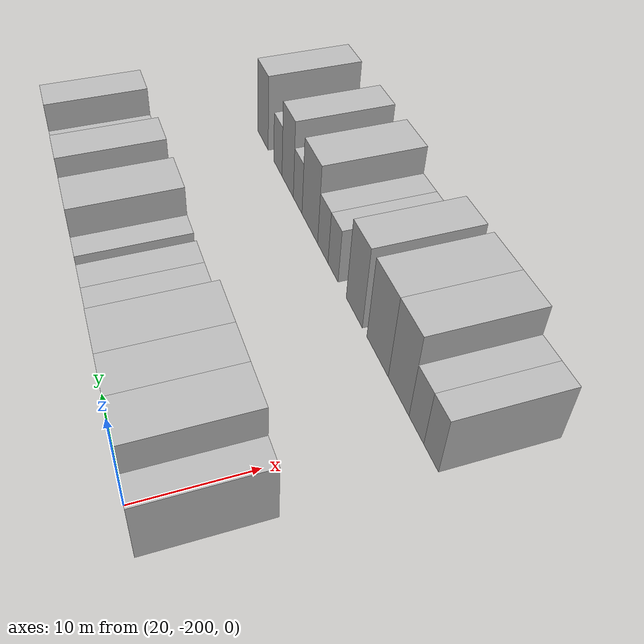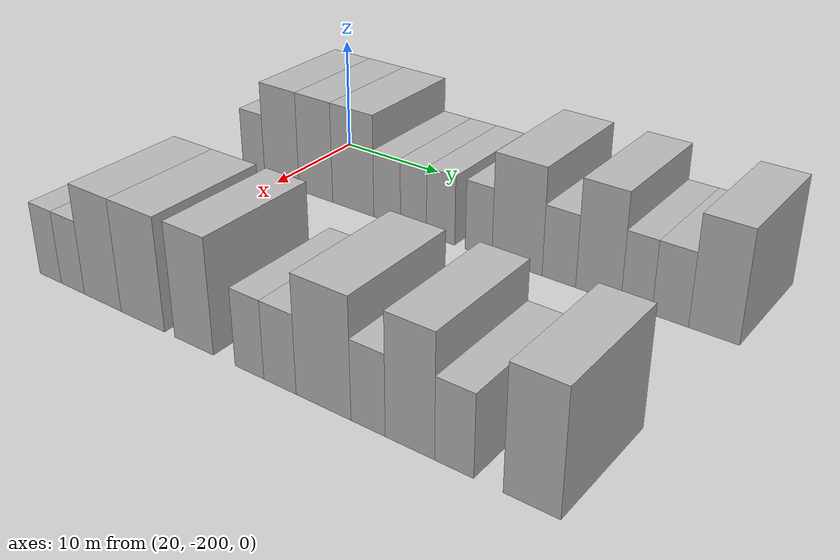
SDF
<sdf version="1.6">
 <world name="default">
  <model name="building_1">
   <static>1</static>
   <pose>25.0000 -202.7227 0 0.000000 0.000000 0.000000</pose>
   <link name="link">
    <pose>0 0 3.00 0 0 0</pose>
    <collision name="collision"><geometry><box><size>10.0000 2.5547 6.0000</size></box></geometry></collision>
    <visual name="visual">
     <cast_shadows>0</cast_shadows>
     <geometry><box><size>10.0000 2.5547 6.0000</size></box></geometry>
     <material>
      <script>
       <uri>model://HANNAS_wall/materials/scripts</uri>
       <uri>model://HANNAS_wall/materials/textures</uri>
       <name>vrc/HANNAS_wall</name>
      </script>
     </material>
    </visual>
   </link>
  </model>
  <model name="building_2">
   <static>1</static>
   <pose>25.0000 -199.4642 0 0.000000 0.000000 0.000000</pose>
   <link name="link">
    <pose>0 0 4.50 0 0 0</pose>
    <collision name="collision"><geometry><box><size>10.0000 3.9621 9.0000</size></box></geometry></collision>
    <visual name="visual">
     <cast_shadows>0</cast_shadows>
     <geometry><box><size>10.0000 3.9621 9.0000</size></box></geometry>
     <material>
      <script>
       <uri>model://HANNAS_wall/materials/scripts</uri>
       <uri>model://HANNAS_wall/materials/textures</uri>
       <name>vrc/HANNAS_wall</name>
      </script>
     </material>
    </visual>
   </link>
  </model>
  <model name="building_3">
   <static>1</static>
   <pose>25.0000 -195.6137 0 0.000000 0.000000 0.000000</pose>
   <link name="link">
    <pose>0 0 4.50 0 0 0</pose>
    <collision name="collision"><geometry><box><size>10.0000 3.7389 9.0000</size></box></geometry></collision>
    <visual name="visual">
     <cast_shadows>0</cast_shadows>
     <geometry><box><size>10.0000 3.7389 9.0000</size></box></geometry>
     <material>
      <script>
       <uri>model://HANNAS_wall/materials/scripts</uri>
       <uri>model://HANNAS_wall/materials/textures</uri>
       <name>vrc/HANNAS_wall</name>
      </script>
     </material>
    </visual>
   </link>
  </model>
  <model name="building_4">
   <static>1</static>
   <pose>25.0000 -191.5522 0 0.000000 0.000000 0.000000</pose>
   <link name="link">
    <pose>0 0 4.50 0 0 0</pose>
    <collision name="collision"><geometry><box><size>10.0000 4.3840 9.0000</size></box></geometry></collision>
    <visual name="visual">
     <cast_shadows>0</cast_shadows>
     <geometry><box><size>10.0000 4.3840 9.0000</size></box></geometry>
     <material>
      <script>
       <uri>model://HANNAS_wall/materials/scripts</uri>
       <uri>model://HANNAS_wall/materials/textures</uri>
       <name>vrc/HANNAS_wall</name>
      </script>
     </material>
    </visual>
   </link>
  </model>
  <model name="building_5">
   <static>1</static>
   <pose>25.0000 -188.0011 0 0.000000 0.000000 0.000000</pose>
   <link name="link">
    <pose>0 0 3.00 0 0 0</pose>
    <collision name="collision"><geometry><box><size>10.0000 2.7184 6.0000</size></box></geometry></collision>
    <visual name="visual">
     <cast_shadows>0</cast_shadows>
     <geometry><box><size>10.0000 2.7184 6.0000</size></box></geometry>
     <material>
      <script>
       <uri>model://HANNAS_wall/materials/scripts</uri>
       <uri>model://HANNAS_wall/materials/textures</uri>
       <name>vrc/HANNAS_wall</name>
      </script>
     </material>
    </visual>
   </link>
  </model>
  <model name="building_6">
   <static>1</static>
   <pose>25.0000 -185.3521 0 0.000000 0.000000 0.000000</pose>
   <link name="link">
    <pose>0 0 3.00 0 0 0</pose>
    <collision name="collision"><geometry><box><size>10.0000 2.5795 6.0000</size></box></geometry></collision>
    <visual name="visual">
     <cast_shadows>0</cast_shadows>
     <geometry><box><size>10.0000 2.5795 6.0000</size></box></geometry>
     <material>
      <script>
       <uri>model://HANNAS_wall/materials/scripts</uri>
       <uri>model://HANNAS_wall/materials/textures</uri>
       <name>vrc/HANNAS_wall</name>
      </script>
     </material>
    </visual>
   </link>
  </model>
  <model name="building_7">
   <static>1</static>
   <pose>25.0000 -182.6948 0 0.000000 0.000000 0.000000</pose>
   <link name="link">
    <pose>0 0 3.00 0 0 0</pose>
    <collision name="collision"><geometry><box><size>10.0000 2.7350 6.0000</size></box></geometry></collision>
    <visual name="visual">
     <cast_shadows>0</cast_shadows>
     <geometry><box><size>10.0000 2.7350 6.0000</size></box></geometry>
     <material>
      <script>
       <uri>model://HANNAS_wall/materials/scripts</uri>
       <uri>model://HANNAS_wall/materials/textures</uri>
       <name>vrc/HANNAS_wall</name>
      </script>
     </material>
    </visual>
   </link>
  </model>
  <model name="building_8">
   <static>1</static>
   <pose>25.0000 -179.0899 0 0.000000 0.000000 0.000000</pose>
   <link name="link">
    <pose>0 0 3.00 0 0 0</pose>
    <collision name="collision"><geometry><box><size>10.0000 2.4749 6.0000</size></box></geometry></collision>
    <visual name="visual">
     <cast_shadows>0</cast_shadows>
     <geometry><box><size>10.0000 2.4749 6.0000</size></box></geometry>
     <material>
      <script>
       <uri>model://HANNAS_wall/materials/scripts</uri>
       <uri>model://HANNAS_wall/materials/textures</uri>
       <name>vrc/HANNAS_wall</name>
      </script>
     </material>
    </visual>
   </link>
  </model>
  <model name="building_9">
   <static>1</static>
   <pose>25.0000 -175.6218 0 0.000000 0.000000 0.000000</pose>
   <link name="link">
    <pose>0 0 4.50 0 0 0</pose>
    <collision name="collision"><geometry><box><size>10.0000 4.4612 9.0000</size></box></geometry></collision>
    <visual name="visual">
     <cast_shadows>0</cast_shadows>
     <geometry><box><size>10.0000 4.4612 9.0000</size></box></geometry>
     <material>
      <script>
       <uri>model://HANNAS_wall/materials/scripts</uri>
       <uri>model://HANNAS_wall/materials/textures</uri>
       <name>vrc/HANNAS_wall</name>
      </script>
     </material>
    </visual>
   </link>
  </model>
  <model name="building_10">
   <static>1</static>
   <pose>25.0000 -171.9620 0 0.000000 0.000000 0.000000</pose>
   <link name="link">
    <pose>0 0 3.00 0 0 0</pose>
    <collision name="collision"><geometry><box><size>10.0000 2.8583 6.0000</size></box></geometry></collision>
    <visual name="visual">
     <cast_shadows>0</cast_shadows>
     <geometry><box><size>10.0000 2.8583 6.0000</size></box></geometry>
     <material>
      <script>
       <uri>model://HANNAS_wall/materials/scripts</uri>
       <uri>model://HANNAS_wall/materials/textures</uri>
       <name>vrc/HANNAS_wall</name>
      </script>
     </material>
    </visual>
   </link>
  </model>
  <model name="building_11">
   <static>1</static>
   <pose>25.0000 -168.6852 0 0.000000 0.000000 0.000000</pose>
   <link name="link">
    <pose>0 0 4.50 0 0 0</pose>
    <collision name="collision"><geometry><box><size>10.0000 3.6953 9.0000</size></box></geometry></collision>
    <visual name="visual">
     <cast_shadows>0</cast_shadows>
     <geometry><box><size>10.0000 3.6953 9.0000</size></box></geometry>
     <material>
      <script>
       <uri>model://HANNAS_wall/materials/scripts</uri>
       <uri>model://HANNAS_wall/materials/textures</uri>
       <name>vrc/HANNAS_wall</name>
      </script>
     </material>
    </visual>
   </link>
  </model>
  <model name="building_12">
   <static>1</static>
   <pose>25.0000 -165.6079 0 0.000000 0.000000 0.000000</pose>
   <link name="link">
    <pose>0 0 3.00 0 0 0</pose>
    <collision name="collision"><geometry><box><size>10.0000 2.4591 6.0000</size></box></geometry></collision>
    <visual name="visual">
     <cast_shadows>0</cast_shadows>
     <geometry><box><size>10.0000 2.4591 6.0000</size></box></geometry>
     <material>
      <script>
       <uri>model://HANNAS_wall/materials/scripts</uri>
       <uri>model://HANNAS_wall/materials/textures</uri>
       <name>vrc/HANNAS_wall</name>
      </script>
     </material>
    </visual>
   </link>
  </model>
  <model name="building_13">
   <static>1</static>
   <pose>25.0000 -162.9786 0 0.000000 0.000000 0.000000</pose>
   <link name="link">
    <pose>0 0 3.00 0 0 0</pose>
    <collision name="collision"><geometry><box><size>10.0000 2.7996 6.0000</size></box></geometry></collision>
    <visual name="visual">
     <cast_shadows>0</cast_shadows>
     <geometry><box><size>10.0000 2.7996 6.0000</size></box></geometry>
     <material>
      <script>
       <uri>model://HANNAS_wall/materials/scripts</uri>
       <uri>model://HANNAS_wall/materials/textures</uri>
       <name>vrc/HANNAS_wall</name>
      </script>
     </material>
    </visual>
   </link>
  </model>
  <model name="building_14">
   <static>1</static>
   <pose>25.0000 -159.7097 0 0.000000 0.000000 0.000000</pose>
   <link name="link">
    <pose>0 0 4.50 0 0 0</pose>
    <collision name="collision"><geometry><box><size>10.0000 3.7382 9.0000</size></box></geometry></collision>
    <visual name="visual">
     <cast_shadows>0</cast_shadows>
     <geometry><box><size>10.0000 3.7382 9.0000</size></box></geometry>
     <material>
      <script>
       <uri>model://HANNAS_wall/materials/scripts</uri>
       <uri>model://HANNAS_wall/materials/textures</uri>
       <name>vrc/HANNAS_wall</name>
      </script>
     </material>
    </visual>
   </link>
  </model>
  <model name="building_106">
   <static>1</static>
   <pose>47.0000 -202.7649 0 0.000000 0.000000 0.000000</pose>
   <link name="link">
    <pose>0 0 3.00 0 0 0</pose>
    <collision name="collision"><geometry><box><size>10.0000 2.4702 6.0000</size></box></geometry></collision>
    <visual name="visual">
     <cast_shadows>0</cast_shadows>
     <geometry><box><size>10.0000 2.4702 6.0000</size></box></geometry>
     <material>
      <script>
       <uri>model://HANNAS_wall/materials/scripts</uri>
       <uri>model://HANNAS_wall/materials/textures</uri>
       <name>vrc/HANNAS_wall</name>
      </script>
     </material>
    </visual>
   </link>
  </model>
  <model name="building_107">
   <static>1</static>
   <pose>47.0000 -200.2270 0 0.000000 0.000000 0.000000</pose>
   <link name="link">
    <pose>0 0 3.00 0 0 0</pose>
    <collision name="collision"><geometry><box><size>10.0000 2.6056 6.0000</size></box></geometry></collision>
    <visual name="visual">
     <cast_shadows>0</cast_shadows>
     <geometry><box><size>10.0000 2.6056 6.0000</size></box></geometry>
     <material>
      <script>
       <uri>model://HANNAS_wall/materials/scripts</uri>
       <uri>model://HANNAS_wall/materials/textures</uri>
       <name>vrc/HANNAS_wall</name>
      </script>
     </material>
    </visual>
   </link>
  </model>
  <model name="building_108">
   <static>1</static>
   <pose>47.0000 -196.9460 0 0.000000 0.000000 0.000000</pose>
   <link name="link">
    <pose>0 0 4.50 0 0 0</pose>
    <collision name="collision"><geometry><box><size>10.0000 3.9562 9.0000</size></box></geometry></collision>
    <visual name="visual">
     <cast_shadows>0</cast_shadows>
     <geometry><box><size>10.0000 3.9562 9.0000</size></box></geometry>
     <material>
      <script>
       <uri>model://HANNAS_wall/materials/scripts</uri>
       <uri>model://HANNAS_wall/materials/textures</uri>
       <name>vrc/HANNAS_wall</name>
      </script>
     </material>
    </visual>
   </link>
  </model>
  <model name="building_109">
   <static>1</static>
   <pose>47.0000 -192.7400 0 0.000000 0.000000 0.000000</pose>
   <link name="link">
    <pose>0 0 4.50 0 0 0</pose>
    <collision name="collision"><geometry><box><size>10.0000 4.4558 9.0000</size></box></geometry></collision>
    <visual name="visual">
     <cast_shadows>0</cast_shadows>
     <geometry><box><size>10.0000 4.4558 9.0000</size></box></geometry>
     <material>
      <script>
       <uri>model://HANNAS_wall/materials/scripts</uri>
       <uri>model://HANNAS_wall/materials/textures</uri>
       <name>vrc/HANNAS_wall</name>
      </script>
     </material>
    </visual>
   </link>
  </model>
  <model name="building_110">
   <static>1</static>
   <pose>47.0000 -187.6516 0 0.000000 0.000000 0.000000</pose>
   <link name="link">
    <pose>0 0 4.50 0 0 0</pose>
    <collision name="collision"><geometry><box><size>10.0000 3.7209 9.0000</size></box></geometry></collision>
    <visual name="visual">
     <cast_shadows>0</cast_shadows>
     <geometry><box><size>10.0000 3.7209 9.0000</size></box></geometry>
     <material>
      <script>
       <uri>model://HANNAS_wall/materials/scripts</uri>
       <uri>model://HANNAS_wall/materials/textures</uri>
       <name>vrc/HANNAS_wall</name>
      </script>
     </material>
    </visual>
   </link>
  </model>
  <model name="building_111">
   <static>1</static>
   <pose>47.0000 -182.5007 0 0.000000 0.000000 0.000000</pose>
   <link name="link">
    <pose>0 0 3.00 0 0 0</pose>
    <collision name="collision"><geometry><box><size>10.0000 2.5810 6.0000</size></box></geometry></collision>
    <visual name="visual">
     <cast_shadows>0</cast_shadows>
     <geometry><box><size>10.0000 2.5810 6.0000</size></box></geometry>
     <material>
      <script>
       <uri>model://HANNAS_wall/materials/scripts</uri>
       <uri>model://HANNAS_wall/materials/textures</uri>
       <name>vrc/HANNAS_wall</name>
      </script>
     </material>
    </visual>
   </link>
  </model>
  <model name="building_112">
   <static>1</static>
   <pose>47.0000 -179.8208 0 0.000000 0.000000 0.000000</pose>
   <link name="link">
    <pose>0 0 3.00 0 0 0</pose>
    <collision name="collision"><geometry><box><size>10.0000 2.7787 6.0000</size></box></geometry></collision>
    <visual name="visual">
     <cast_shadows>0</cast_shadows>
     <geometry><box><size>10.0000 2.7787 6.0000</size></box></geometry>
     <material>
      <script>
       <uri>model://HANNAS_wall/materials/scripts</uri>
       <uri>model://HANNAS_wall/materials/textures</uri>
       <name>vrc/HANNAS_wall</name>
      </script>
     </material>
    </visual>
   </link>
  </model>
  <model name="building_113">
   <static>1</static>
   <pose>47.0000 -176.1829 0 0.000000 0.000000 0.000000</pose>
   <link name="link">
    <pose>0 0 4.50 0 0 0</pose>
    <collision name="collision"><geometry><box><size>10.0000 4.4972 9.0000</size></box></geometry></collision>
    <visual name="visual">
     <cast_shadows>0</cast_shadows>
     <geometry><box><size>10.0000 4.4972 9.0000</size></box></geometry>
     <material>
      <script>
       <uri>model://HANNAS_wall/materials/scripts</uri>
       <uri>model://HANNAS_wall/materials/textures</uri>
       <name>vrc/HANNAS_wall</name>
      </script>
     </material>
    </visual>
   </link>
  </model>
  <model name="building_114">
   <static>1</static>
   <pose>47.0000 -172.6053 0 0.000000 0.000000 0.000000</pose>
   <link name="link">
    <pose>0 0 3.00 0 0 0</pose>
    <collision name="collision"><geometry><box><size>10.0000 2.6580 6.0000</size></box></geometry></collision>
    <visual name="visual">
     <cast_shadows>0</cast_shadows>
     <geometry><box><size>10.0000 2.6580 6.0000</size></box></geometry>
     <material>
      <script>
       <uri>model://HANNAS_wall/materials/scripts</uri>
       <uri>model://HANNAS_wall/materials/textures</uri>
       <name>vrc/HANNAS_wall</name>
      </script>
     </material>
    </visual>
   </link>
  </model>
  <model name="building_115">
   <static>1</static>
   <pose>47.0000 -169.4472 0 0.000000 0.000000 0.000000</pose>
   <link name="link">
    <pose>0 0 4.50 0 0 0</pose>
    <collision name="collision"><geometry><box><size>10.0000 3.6582 9.0000</size></box></geometry></collision>
    <visual name="visual">
     <cast_shadows>0</cast_shadows>
     <geometry><box><size>10.0000 3.6582 9.0000</size></box></geometry>
     <material>
      <script>
       <uri>model://HANNAS_wall/materials/scripts</uri>
       <uri>model://HANNAS_wall/materials/textures</uri>
       <name>vrc/HANNAS_wall</name>
      </script>
     </material>
    </visual>
   </link>
  </model>
  <model name="building_116">
   <static>1</static>
   <pose>47.0000 -166.2341 0 0.000000 0.000000 0.000000</pose>
   <link name="link">
    <pose>0 0 3.00 0 0 0</pose>
    <collision name="collision"><geometry><box><size>10.0000 2.7681 6.0000</size></box></geometry></collision>
    <visual name="visual">
     <cast_shadows>0</cast_shadows>
     <geometry><box><size>10.0000 2.7681 6.0000</size></box></geometry>
     <material>
      <script>
       <uri>model://HANNAS_wall/materials/scripts</uri>
       <uri>model://HANNAS_wall/materials/textures</uri>
       <name>vrc/HANNAS_wall</name>
      </script>
     </material>
    </visual>
   </link>
  </model>
  <model name="building_117">
   <static>1</static>
   <pose>47.0000 -160.9642 0 0.000000 0.000000 0.000000</pose>
   <link name="link">
    <pose>0 0 4.50 0 0 0</pose>
    <collision name="collision"><geometry><box><size>10.0000 3.7717 9.0000</size></box></geometry></collision>
    <visual name="visual">
     <cast_shadows>0</cast_shadows>
     <geometry><box><size>10.0000 3.7717 9.0000</size></box></geometry>
     <material>
      <script>
       <uri>model://HANNAS_wall/materials/scripts</uri>
       <uri>model://HANNAS_wall/materials/textures</uri>
       <name>vrc/HANNAS_wall</name>
      </script>
     </material>
    </visual>
   </link>
  </model>
 </world>
</sdf>
